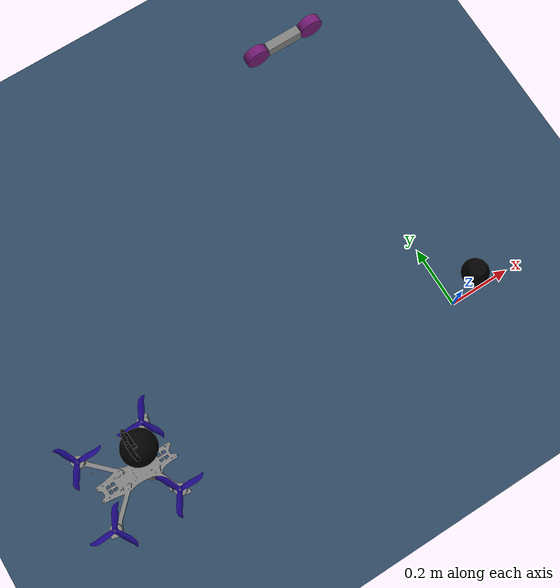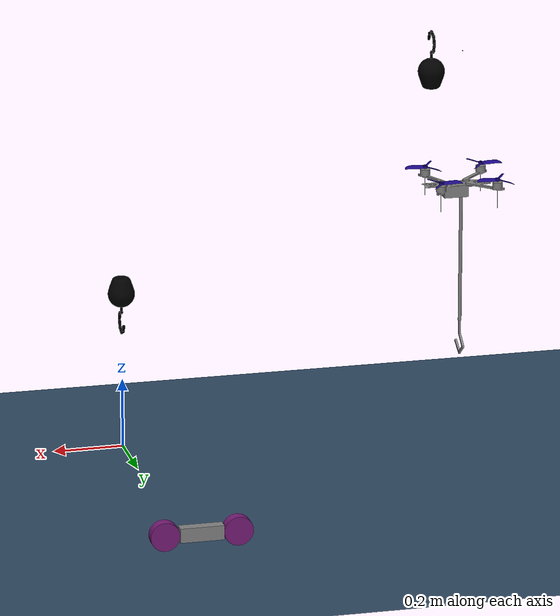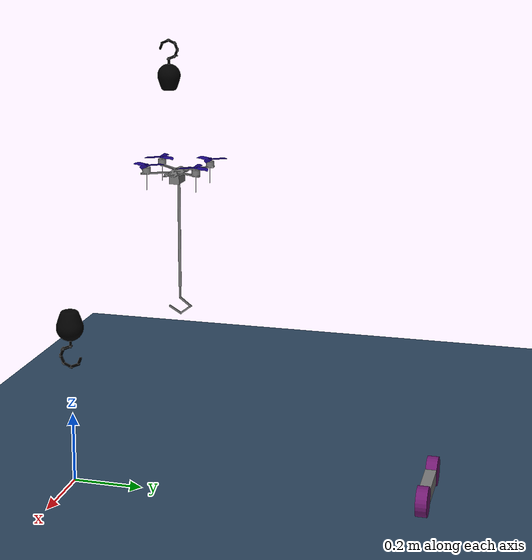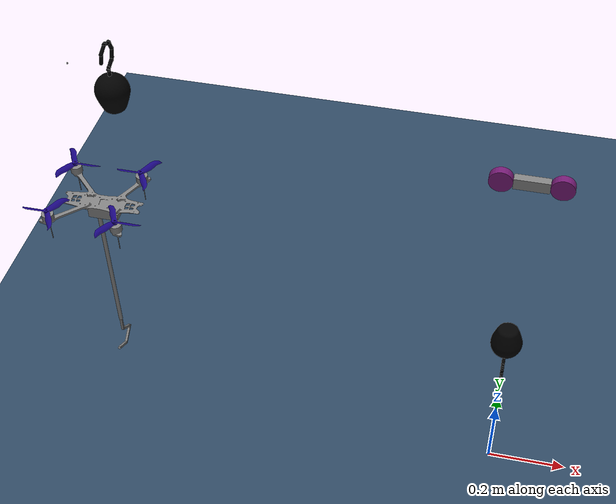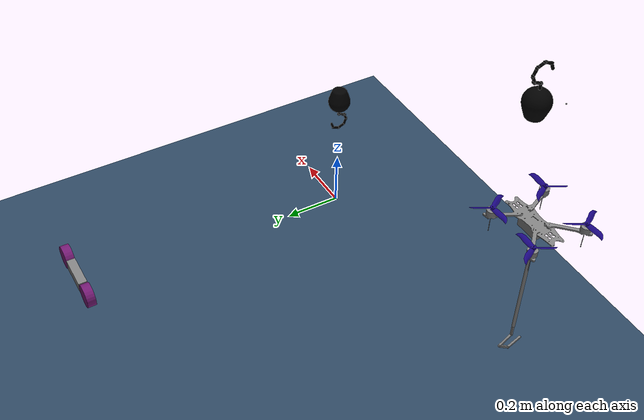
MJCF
<mujoco model="empty_checkerboard">
	<include file="common_assets.xml" />
	<default class="main">
		<default class="pole">
			<geom rgba="0.1 0.1 0.1 1" />
			<default class="pole_top">
				<geom type="cylinder" size="0.022 0.5" pos="0 0 0.5" />
			</default>
			<default class="pole_bottom1">
				<geom type="box" size="0.02 0.205 0.02" quat="0.7071 0 0 0.7071" pos="0 0 0.02" />
				<default class="pole_bottom2">
					<geom quat="1 0 0 0" />
				</default>
			</default>
		</default>
		<default class="landing_zone">
			<geom type="box" pos="0 0 0.01" size="0.1175 0.0975 0.01" rgba="0.8 0.8 0.8 1.0" />
		</default>
	</default>
	<compiler angle="radian" meshdir="" />
	<option timestep="0.001" integrator="implicitfast" />
	<visual>
		<quality shadowsize="4096" />
		<global offwidth="1920" offheight="1200" />
	</visual>
	<asset>
		<mesh file="meshes/crazyflie/cf2_assembly.stl" name="crazyflie" smoothnormal="true" scale="1.5 1.5 1.5" />
		<mesh file="meshes/building/lagyi_cockpit.stl" name="cockpit" smoothnormal="true" scale="0.0085 0.0085 0.0085" />
		<mesh file="meshes/building/lagyi_fal1.stl" name="fal1" smoothnormal="true" scale="0.0085 0.0085 0.0085" />
		<mesh file="meshes/building/lagyi_fal2.stl" name="fal2" smoothnormal="true" scale="0.0085 0.0085 0.0085" />
		<mesh file="meshes/building/lagyi_oszlop1.stl" name="oszlop1" smoothnormal="true" scale="0.0085 0.0085 0.0085" />
		<mesh file="meshes/building/lagyi_oszlop2.stl" name="oszlop2" smoothnormal="true" scale="0.0085 0.0085 0.0085" />
		<mesh file="meshes/building/lagyi_oszlop3.stl" name="oszlop3" smoothnormal="true" scale="0.0085 0.0085 0.0085" />
		<mesh file="meshes/building/lagyi_oszlop4.stl" name="oszlop4" smoothnormal="true" scale="0.0085 0.0085 0.0085" />
		<mesh file="meshes/bucket/Bucket3.obj" name="bucket" smoothnormal="false" scale="0.035 0.035 0.035" />
		<texture type="skybox" builtin="gradient" rgb1=".3 .5 .7" rgb2="0 0 0" width="512" height="512" />
		<texture name="tex-carpet" type="2d" file="textures/carpet_lagyi4.png" />
		<texture name="tex-roundabout" type="2d" file="textures/roundabout.png" />
		<texture name="tex-hospital" type="2d" file="textures/hospital.png" />
		<texture name="tex-post_office" type="2d" file="textures/post_office.png" />
		<texture name="tex-airport" type="2d" file="textures/airport.png" />
		<texture name="tex-parking_lot" type="2d" file="textures/parking_lot.png" />
		<texture name="tex-sztaki" type="2d" file="textures/sztaki.png" />
		<material name="mat-carpet" shininess="0.1" texture="tex-carpet" texuniform="false" />
		<material name="mat-roundabout" reflectance="0.7" texture="tex-roundabout" texuniform="false" />
		<material name="mat-hospital" reflectance="0.7" texrepeat="7.843 7.692" texture="tex-hospital" texuniform="true" />
		<material name="mat-post_office" reflectance="0.7" texrepeat="7.843 7.843" texture="tex-post_office" texuniform="true" />
		<material name="mat-airport" reflectance="0.7" texrepeat="9.524 9.524" texture="tex-airport" texuniform="true" />
		<material name="mat-parking_lot" reflectance="0.7" texrepeat="9.524 8.696" texture="tex-parking_lot" texuniform="true" />
		<material name="mat-sztaki" reflectance="0.7" texrepeat="9.524 9.524" texture="tex-sztaki" texuniform="true" />
		<texture name="grid" type="2d" builtin="checker" width="100" height="100" rgb1=".1 .2 .3" rgb2=".25 .35 .45" />
		<material name="grid" texture="grid" texrepeat="1 1" texuniform="true" reflectance=".05" />
	</asset>
	<worldbody>
		<light dir="0 -0.3 -1" diffuse=".9 .9 .9" specular="0.6 0.9 0.6" pos="1 1 15" cutoff="70" />
		<light dir="-.2 1 -.4" diffuse=".9 .9 .9" specular="0.6 0.9 0.6" pos="2 -5 6" cutoff="70" />
		<light dir="-1.0 -1.0 -.4" diffuse=".9 .9 .9" specular="0.6 0.9 0.6" pos="10 10 6" directional="true" cutoff="70" />
		<camera pos="2.867 -5.173 1.776" xyaxes="0.875 0.485 0.000 -0.139 0.252 0.958" />
		<geom name="ground" size="20 20 .005" type="plane" material="grid" condim="3" />
		<body name="Bicycle_0" pos="0 1 0.1" quat="1 0 0 0">
			<inertial pos="0 0 0" diaginertia=".01 .01 .01" mass="1.0" />
			<joint name="Bicycle_0" type="free" />
			<site name="Bicycle_0_cog" pos="0 0 0" />
			<geom name="Bicycle_0_crossbar" type="box" size=".06 .015 .02" pos="0 0 0" rgba="0.5 0.5 0.5 1" />
			<body name="Bicycle_0_wheelf">
				<joint name="Bicycle_0_wheelf" type="hinge" pos="0.1 0 0" axis="0 1 0" frictionloss="0.001" damping="0.00001" armature="0.01" />
				<geom name="Bicycle_0_wheelf" type="cylinder" size="0.04 0.015" pos="0.1 0 0" euler="1.571 0 0" material="material_check" />
			</body>
			<body name="Bicycle_0_wheelr">
				<joint name="Bicycle_0_wheelr" type="hinge" pos="-0.1 0 0" axis="0 1 0" frictionloss="0.001" damping="0.00001" armature="0.01" />
				<geom name="Bicycle_0_wheelr" type="cylinder" size="0.04 0.015" pos="-0.1 0 0" euler="1.571 0 0" material="material_check" />
			</body>
		</body>
		<body name="HookedBumblebee1DOF_0" pos="-1 0 0.7" quat="1 0 0 0">
			<geom name="HookedBumblebee1DOF_0_body" pos="0.0132 0 0" type="mesh" quat="-0.7071067811865475 -0.0 0.0 0.7071067811865476" mesh="bumblebee_body" rgba="0.5 0.5 0.5 1" />
			<inertial pos="0.0085 0.0 0.0" diaginertia="1.5e-3 1.45e-3 2.66e-3" mass="0.605" />
			<joint name="HookedBumblebee1DOF_0" type="free" />
			<site name="HookedBumblebee1DOF_0_cog" pos="0 0 0" size="0.005" />
			<body name="HookedBumblebee1DOF_0_prop0">
				<joint name="HookedBumblebee1DOF_0_prop0" axis="0 0 1" pos="0.091 -0.087 0.036" />
				<geom name="HookedBumblebee1DOF_0_prop0" type="mesh" mesh="bumblebee_ccw_prop" mass="0.00001" pos="0.091 -0.087 0.036" rgba="0.1 0.02 0.5 1.0" />
			</body>
			<site name="HookedBumblebee1DOF_0_prop0" pos="0.091 -0.087 0.036" size="0.0001" />
			<body name="HookedBumblebee1DOF_0_prop1">
				<joint name="HookedBumblebee1DOF_0_prop1" axis="0 0 1" pos="-0.074 -0.087 0.036" />
				<geom name="HookedBumblebee1DOF_0_prop1" type="mesh" mesh="bumblebee_cw_prop" mass="0.00001" pos="-0.074 -0.087 0.036" rgba="0.1 0.02 0.5 1.0" />
			</body>
			<site name="HookedBumblebee1DOF_0_prop1" pos="-0.074 -0.087 0.036" size="0.0001" />
			<body name="HookedBumblebee1DOF_0_prop2">
				<joint name="HookedBumblebee1DOF_0_prop2" axis="0 0 1" pos="-0.074 0.087 0.036" />
				<geom name="HookedBumblebee1DOF_0_prop2" type="mesh" mesh="bumblebee_ccw_prop" mass="0.00001" pos="-0.074 0.087 0.036" rgba="0.1 0.02 0.5 1.0" />
			</body>
			<site name="HookedBumblebee1DOF_0_prop2" pos="-0.074 0.087 0.036" size="0.0001" />
			<body name="HookedBumblebee1DOF_0_prop3">
				<joint name="HookedBumblebee1DOF_0_prop3" axis="0 0 1" pos="0.091 0.087 0.036" />
				<geom name="HookedBumblebee1DOF_0_prop3" type="mesh" mesh="bumblebee_cw_prop" mass="0.00001" pos="0.091 0.087 0.036" rgba="0.1 0.02 0.5 1.0" />
			</body>
			<site name="HookedBumblebee1DOF_0_prop3" pos="0.091 0.087 0.036" size="0.0001" />
			<body name="HookedBumblebee1DOF_0_hook" pos="0.0085 0 0">
				<site name="HookedBumblebee1DOF_0_hook_base" pos="0 0 0.4" type="sphere" size="0.002" />
				<joint name="HookedBumblebee1DOF_0_hook" axis="0 1 0" pos="0 0 0" damping="0.001" />
				<geom name="HookedBumblebee1DOF_0_rod" type="cylinder" fromto="0 0 0  0 0 -0.4" size="0.005" mass="0.0" />
				<body name="HookedBumblebee1DOF_0_hook_head" pos="0 0 -0.4" euler="0 3.141592 0">
					<geom type="box" pos="0 0 0.02" size="0.003 0.003 0.02" mass="0.02" />
					<geom type="box" pos="0 0.019 0.054" euler="-0.92 0 0" size="0.003 0.003 0.026" mass="0.0001" />
					<geom type="box" pos="0 0.02 0.0825" euler="0.92 0 0" size="0.003 0.003 0.026" mass="0.0001" />
					<geom type="box" pos="0 -0.018 0.085" euler="-1.0472 0 0" size="0.003 0.003 0.026" mass="0.0001" />
				</body>
			</body>
		</body>
		<body name="DynamicPayload_0" pos="-0.9 0 1" quat="1 0 0 0">
			<joint name="DynamicPayload_0" type="free" />
			<geom name="DynamicPayload_0" type="mesh" mesh="payload_simplified" pos="0 0 0.0405" rgba="0 0 0 1" euler="1.57 0 0" mass="0.0001" />
			<geom name="DynamicPayload_0_bottom" type="box" size=".016 .016 .02" pos="0 0 0.0175" mass="0.07" rgba="1.0 1.0 1.0 0.0" />
			<geom type="capsule" pos="0 0 0.075" size="0.004 0.027" rgba="0 0 0 1" mass="0.0001" />
			<geom type="capsule" pos="0 0.01173 0.10565" euler="-1.12200 0 0" size="0.004 0.01562" rgba="0 0 0 1" mass="0.0001" />
			<geom type="capsule" pos="0 0.01061 0.10439" euler="-1.17810 0 0" size="0.004 0.01378" rgba="0 0 0 1" mass="0.0001" />
			<geom type="capsule" pos="0 0.02561 0.11939" euler="-0.39270 0 0" size="0.004 0.01378" rgba="0 0 0 1" mass="0.0001" />
			<geom type="capsule" pos="0 0.02561 0.14061" euler="0.39270 0 0" size="0.004 0.01378" rgba="0 0 0 1" mass="0.0001" />
			<geom type="capsule" pos="0 0.01061 0.15561" euler="1.17810 0 0" size="0.004 0.01378" rgba="0 0 0 1" mass="0.0001" />
			<geom type="capsule" pos="0 -0.01061 0.15561" euler="1.96350 0 0" size="0.004 0.01378" rgba="0 0 0 1" mass="0.0001" />
			<geom type="capsule" pos="0 -0.02561 0.14061" euler="2.74889 0 0" size="0.004 0.008" rgba="0 0 0 1" mass="0.0001" />
		</body>
		<body name="MocapPayload_0" pos="0 0 0.5" quat="0 1 0 0" mocap="true">
			<geom name="MocapPayload_0" type="mesh" mesh="payload_simplified" pos="0 0 0.0405" rgba="0 0 0 1" euler="1.57 0 0" />
			<geom type="capsule" pos="0 0 0.075" size="0.004 0.027" rgba="0 0 0 1" />
			<geom type="capsule" pos="0 0.01173 0.10565" euler="-1.12200 0 0" size="0.004 0.01562" rgba="0 0 0 1" />
			<geom type="capsule" pos="0 0.01061 0.10439" euler="-1.17810 0 0" size="0.004 0.01378" rgba="0 0 0 1" />
			<geom type="capsule" pos="0 0.02561 0.11939" euler="-0.39270 0 0" size="0.004 0.01378" rgba="0 0 0 1" />
			<geom type="capsule" pos="0 0.02561 0.14061" euler="0.39270 0 0" size="0.004 0.01378" rgba="0 0 0 1" />
			<geom type="capsule" pos="0 0.01061 0.15561" euler="1.17810 0 0" size="0.004 0.01378" rgba="0 0 0 1" />
			<geom type="capsule" pos="0 -0.01061 0.15561" euler="1.96350 0 0" size="0.004 0.01378" rgba="0 0 0 1" />
			<geom type="capsule" pos="0 -0.02561 0.14061" euler="2.74889 0 0" size="0.004 0.008" rgba="0 0 0 1" />
		</body>
	</worldbody>
	<actuator>
		<motor name="Bicycle_0_actr" joint="Bicycle_0_wheelr" />
		<general site="HookedBumblebee1DOF_0_prop0" name="HookedBumblebee1DOF_0_actr0" gear="0 0 1 0 0 0.5954" ctrllimited="true" ctrlrange="0 15" />
		<general site="HookedBumblebee1DOF_0_prop1" name="HookedBumblebee1DOF_0_actr1" gear="0 0 1 0 0 -0.5954" ctrllimited="true" ctrlrange="0 15" />
		<general site="HookedBumblebee1DOF_0_prop2" name="HookedBumblebee1DOF_0_actr2" gear="0 0 1 0 0 0.5954" ctrllimited="true" ctrlrange="0 15" />
		<general site="HookedBumblebee1DOF_0_prop3" name="HookedBumblebee1DOF_0_actr3" gear="0 0 1 0 0 -0.5954" ctrllimited="true" ctrlrange="0 15" />
	</actuator>
	<sensor>
		<velocimeter site="Bicycle_0_cog" name="Bicycle_0_velocimeter" />
		<gyro site="HookedBumblebee1DOF_0_cog" name="HookedBumblebee1DOF_0_gyro" />
		<framelinvel objtype="site" objname="HookedBumblebee1DOF_0_cog" name="HookedBumblebee1DOF_0_velocimeter" />
		<accelerometer site="HookedBumblebee1DOF_0_cog" name="HookedBumblebee1DOF_0_accelerometer" />
		<framepos objtype="site" objname="HookedBumblebee1DOF_0_cog" name="HookedBumblebee1DOF_0_posimeter" />
		<framequat objtype="site" objname="HookedBumblebee1DOF_0_cog" name="HookedBumblebee1DOF_0_orimeter" />
		<frameangacc objtype="site" objname="HookedBumblebee1DOF_0_cog" name="HookedBumblebee1DOF_0_ang_accelerometer" />
		<framepos objtype="site" objname="HookedBumblebee1DOF_0_hook_base" name="HookedBumblebee1DOF_0_hook_pos" />
		<framelinvel objtype="site" objname="HookedBumblebee1DOF_0_hook_base" name="HookedBumblebee1DOF_0_hook_vel" />
		<framequat objtype="site" objname="HookedBumblebee1DOF_0_hook_base" name="HookedBumblebee1DOF_0_hook_quat" />
		<frameangvel objtype="site" objname="HookedBumblebee1DOF_0_hook_base" name="HookedBumblebee1DOF_0_hook_ang_vel" />
	</sensor>
</mujoco>

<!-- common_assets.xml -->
<mujoco>
  <asset>
    <mesh file="meshes/payload/payload_simplified.stl" name="payload_simplified" smoothnormal="false" scale="0.00115 0.00115 0.00115"/>

    <mesh file="meshes/crazyflie/cf_body.stl" name="crazyflie_body" smoothnormal="true" scale="1.0452 1.0452 1.0452"/>
    <mesh file="meshes/crazyflie/4_motormounts.stl" name="crazyflie_4_motormounts" smoothnormal="true" scale="1.0452 1.0452 1.0452"/>
    <mesh file="meshes/crazyflie/4_motors.stl" name="crazyflie_4_motors" smoothnormal="true" scale="1.0452 1.0452 1.0452"/>
    <mesh file="meshes/crazyflie/ccw_prop.stl" name="crazyflie_ccw_prop" smoothnormal="true" scale="1.0452 1.0452 1.0452"/>
    <mesh file="meshes/crazyflie/cw_prop.stl" name="crazyflie_cw_prop" smoothnormal="true" scale="1.0452 1.0452 1.0452"/>

    <mesh file="meshes/bumblebee/quad_model_no_prop_simplified.stl" name="bumblebee_body" smoothnormal="true" scale="0.001 0.001 0.001"/>
    <mesh file="meshes/bumblebee/ccw_propeller_simplified.stl" name="bumblebee_ccw_prop" smoothnormal="true" scale="0.001 0.001 0.001"/>
    <mesh file="meshes/bumblebee/cw_propeller_simplified.stl" name="bumblebee_cw_prop" smoothnormal="true" scale="0.001 0.001 0.001"/>

    <texture name="tex_check" builtin="checker" type="2d" width="256" height="256" rgb1=".8 .1 .1" rgb2=".1 .1 .8"/>
    <material name="material_check" texture="tex_check" texrepeat="2 2" texuniform="true"/>
  </asset>
</mujoco>
